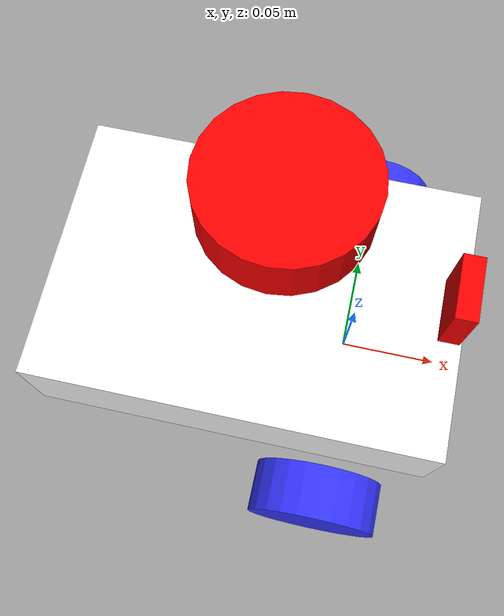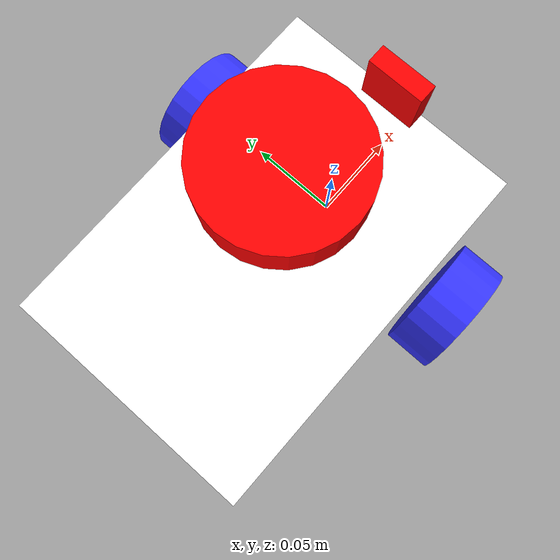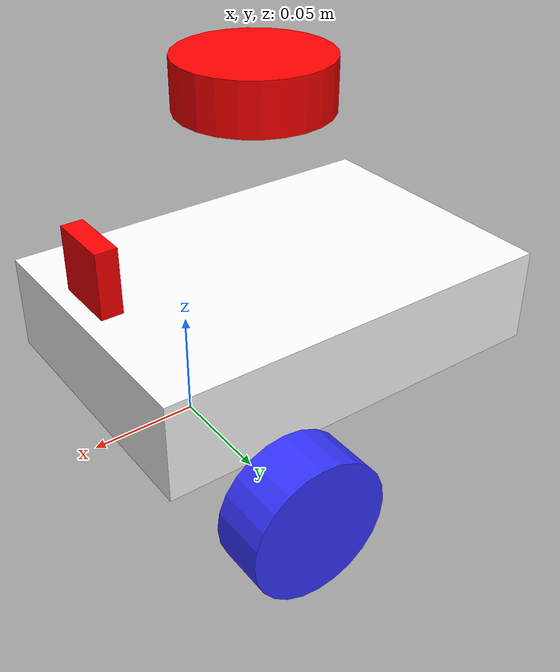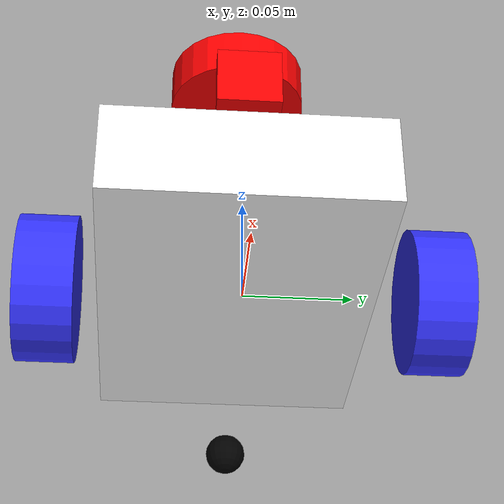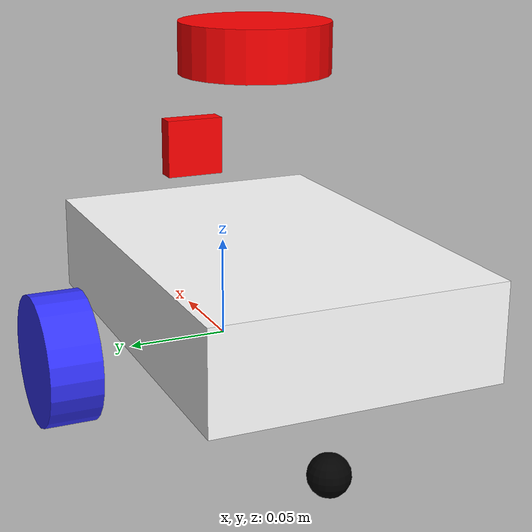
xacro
<?xml version="1.0"?>
<robot xmlns:xacro="http://www.ros.org/wiki/xacro"  name="robot">

    <xacro:arg name="use_ros2_control" default="true"/>
    <xacro:arg name="sim_mode" default="false"/>

    <xacro:include filename="robot_core.xacro" />
    <xacro:include filename="camera.xacro" />
    <xacro:include filename="lidar.xacro" />

    <xacro:if value="$(arg use_ros2_control)">
        <xacro:include filename="ros2_control.xacro" />
    </xacro:if>

</robot>

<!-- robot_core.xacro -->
<robot xmlns:xacro="http://www.ros.org/wiki/xacro">
    <xacro:include filename="inertial_macros.xacro"/>

    <xacro:property name="chassis_length" value="0.198"/>
    <xacro:property name="chassis_width" value="0.135"/>
    <xacro:property name="chassis_height" value="0.046"/>
    <xacro:property name="chassis_mass" value="1.0"/>
    <xacro:property name="wheel_radius" value="0.033"/>
    <xacro:property name="wheel_thickness" value="0.026"/>
    <xacro:property name="wheel_mass" value="0.05"/>
    <xacro:property name="wheel_offset_x" value="0.148"/>
    <xacro:property name="wheel_offset_y" value="0.087"/>
    <xacro:property name="wheel_offset_z" value="-0.02"/>
    <xacro:property name="caster_wheel_radius" value="0.01"/>
    <xacro:property name="caster_wheel_mass" value="0.01"/>
    <xacro:property name="caster_wheel_offset_x" value="0.028"/>
    <xacro:property name="caster_wheel_offset_z" value="${wheel_offset_z - wheel_radius + caster_wheel_radius}"/>

    <material name="white">
        <color rgba="1 1 1 1"/>
    </material>

    <material name="orange">
        <color rgba="1 0.3 0.1 1"/>
    </material>

    <material name="blue">
        <color rgba="0.2 0.2 1 1"/>
    </material>

    <material name="black">
        <color rgba="0 0 0 1"/>
    </material>

    <material name="red">
        <color rgba="1 0 0 1"/>
    </material>

    <link name="base_link">

    </link>

    <!-- BASE_FOOTPRINT -->

    <joint name="base_footprint_joint" type="fixed">
        <parent link="base_link"/>
        <child link="base_footprint"/>
        <origin xyz="0 0 0" rpy="0 0 0"/>
    </joint>

    <link name="base_footprint">
    </link>

    <!-- CHASSIS -->

    <joint name="chassis_joint" type="fixed">
        <parent link="base_link"/>
        <child link="chassis"/>
        <origin xyz="${-wheel_offset_x} 0 ${-wheel_offset_z}"/>
    </joint>

    <link name="chassis">
        <visual>
            <origin xyz="${chassis_length/2} 0 ${chassis_height/2}" rpy="0.0 0.0 0.0"/>
            <geometry>
                <box size="${chassis_length} ${chassis_width} ${chassis_height}"/>
            </geometry>
            <material name="white"/>
        </visual>
        <collision>
            <origin xyz="${chassis_length/2} 0 ${chassis_height/2}" rpy="0.0 0.0 0.0"/>
            <geometry>
                <box size="${chassis_length} ${chassis_width} ${chassis_height}"/>
            </geometry>
        </collision>
        <xacro:inertial_box mass="${chassis_mass}" x="${chassis_length}" y="${chassis_width}" z="${chassis_height}">
            <origin xyz="${chassis_length/2} 0 ${chassis_height/2}" rpy="0 0 0"/>
        </xacro:inertial_box>
    </link>

    <!-- LEFT WHEEL -->

    <joint name="left_wheel_joint" type="continuous">
        <parent link="base_link"/>
        <child link="left_wheel"/>
        <origin xyz="0.0 ${wheel_offset_y} 0.0" rpy="-${pi/2} 0.0 0.0"/>
        <axis xyz="0.0 0.0 1"/>
    </joint>

    <link name="left_wheel">
        <visual>
            <geometry>
                <cylinder radius="${wheel_radius}" length="${wheel_thickness}"/>
            </geometry>
            <material name="blue"/>
        </visual>
        <collision>
            <geometry>
                <sphere radius="${wheel_radius}"/>
            </geometry>
        </collision>
        <xacro:inertial_cylinder mass="${wheel_mass}" length="${wheel_thickness}" radius="${wheel_radius}">
            <origin xyz="0 0 0" rpy="0 0 0"/>
        </xacro:inertial_cylinder>
    </link>

    <!-- RIGHT WHEEL -->

    <joint name="right_wheel_joint" type="continuous">
        <parent link="base_link"/>
        <child link="right_wheel"/>
        <origin xyz="0.0 -${wheel_offset_y} 0.0" rpy="${pi/2} 0.0 0.0"/>
        <axis xyz="0.0 0.0 -1"/>
    </joint>

    <link name="right_wheel">
        <visual>
            <geometry>
                <cylinder radius="${wheel_radius}" length="${wheel_thickness}"/>
            </geometry>
            <material name="blue"/>
        </visual>
        <collision>
            <geometry>
                <sphere radius="${wheel_radius}"/>
            </geometry>
        </collision>
        <xacro:inertial_cylinder mass="${wheel_mass}" length="${wheel_thickness}" radius="${wheel_radius}">
            <origin xyz="0 0 0" rpy="0 0 0"/>
        </xacro:inertial_cylinder>
    </link>

    <!-- CASTER WHEEL -->

    <joint name="caster_wheel_joint" type="fixed">
        <parent link="chassis"/>
        <child link="caster_wheel"/>
        <origin xyz="${caster_wheel_offset_x} 0.0 ${caster_wheel_offset_z}" rpy="0.0 0.0 0.0"/>

    </joint>

    <link name="caster_wheel">
        <visual>
            <geometry>
                <sphere radius="${caster_wheel_radius}"/>
            </geometry>
            <material name="black"/>
        </visual>
        <collision>
            <geometry>
                <sphere radius="${caster_wheel_radius}"/>
            </geometry>
        </collision>
        <xacro:inertial_sphere mass="${caster_wheel_mass}" radius="${caster_wheel_radius}">
            <origin xyz="0 0 0" rpy="0 0 0"/>
        </xacro:inertial_sphere>
    </link>
    <gazebo reference="caster_wheel">
        <mu1 value="0.001"/>
        <mu2 value="0.001"/>
    </gazebo>

</robot>

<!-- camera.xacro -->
<robot xmlns:xacro="http://www.ros.org/wiki/xacro">

    <joint name="camera_joint" type="fixed">
        <parent link="chassis"/>
        <child link="camera_link"/>
        <origin xyz="0.190 0 0.07" rpy="0.0 0.0 0.0"/>
    </joint>

    <link name="camera_link">
        <visual>
            <geometry>
                <box size="0.01 0.03 0.03"/>
            </geometry>
            <material name="red"/>
        </visual>
    </link>

    <joint name="camera_optical_joint" type="fixed">
        <parent link="camera_link"/>
        <child link="camera_link_optical"/>
        <origin xyz="0 0 0" rpy="${-pi/2} 0.0 ${-pi/2}"/>
    </joint>

    <link name="camera_link_optical"></link>

    <gazebo reference="camera_link">
        <sensor type="camera" name="camera">
            <pose>0 0 0 0 0 0</pose>
            <visualize>true</visualize>
            <update_rate>10</update_rate>
            <camera>
                <camera_info_topic>camera/camera_info</camera_info_topic>
                <horizontal_fov>1.15192</horizontal_fov>
                <image>
                    <width>640</width>
                    <height>480</height>
                    <format>R8G8B8</format>
                </image>
                <clip>
                    <near>0.05</near>
                    <far>8.0</far>
                </clip>
            </camera>
            <topic>camera/image_raw</topic>
            <gz_frame_id>camera_link_optical</gz_frame_id>
        </sensor>

    </gazebo>
</robot>

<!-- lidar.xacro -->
<robot xmlns:xacro="http://www.ros.org/wiki/xacro" >

    <joint name="laser_joint" type="fixed">
        <parent link="chassis"/>
        <child link="laser_frame"/>
        <origin xyz="0.1095 0 0.13225" rpy="0 0 0"/>
    </joint>

    <link name="laser_frame">
        <visual>
            <geometry>
                <cylinder radius="0.035" length="0.0235"/>
            </geometry>
            <material name="red"/>
        </visual>
        <collision>
            <geometry>
                <cylinder radius="0.035" length="0.0235"/>
            </geometry>
        </collision>
        <xacro:inertial_cylinder mass="0.1" length="0.0235" radius="0.035">
            <origin xyz="0 0 0" rpy="0 0 0"/>
        </xacro:inertial_cylinder>
    </link>

    <gazebo reference="laser_frame">
        <sensor name="laser" type="gpu_lidar">
            <pose> 0 0 0 0 0 0 </pose>
            <visualize>false</visualize>
            <update_rate>10</update_rate>
            <lidar>
                <scan>
                    <horizontal>
                        <samples>360</samples>
                        <min_angle>-3.14</min_angle>
                        <max_angle>3.14</max_angle>
                    </horizontal>
                </scan>
                <range>
                    <min>0.3</min>
                    <max>12</max>
                </range>
            </lidar>
            <topic>scan</topic>
            <gz_frame_id>laser_frame</gz_frame_id>
        </sensor>
    </gazebo>
</robot>
